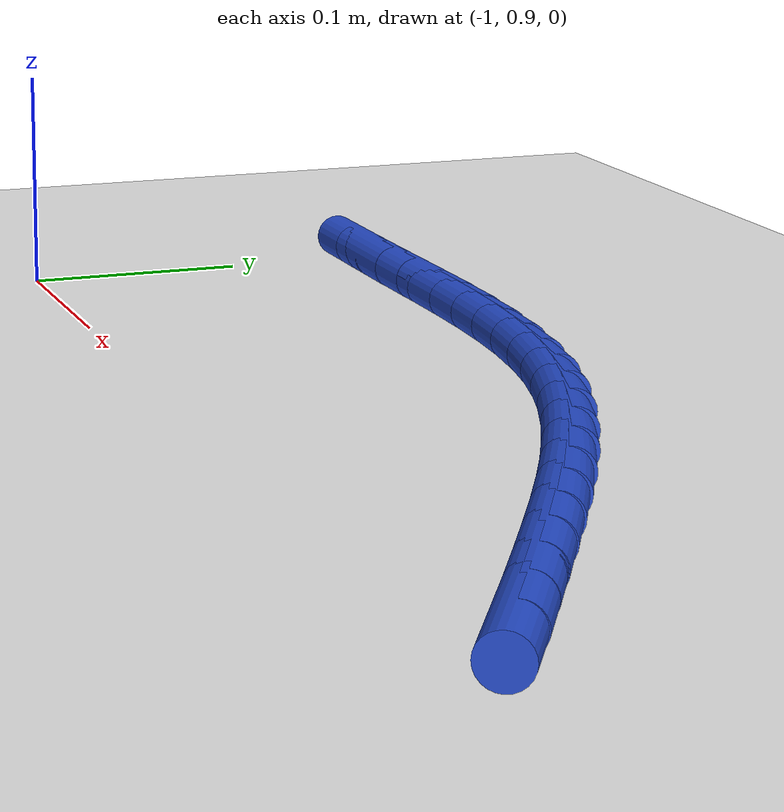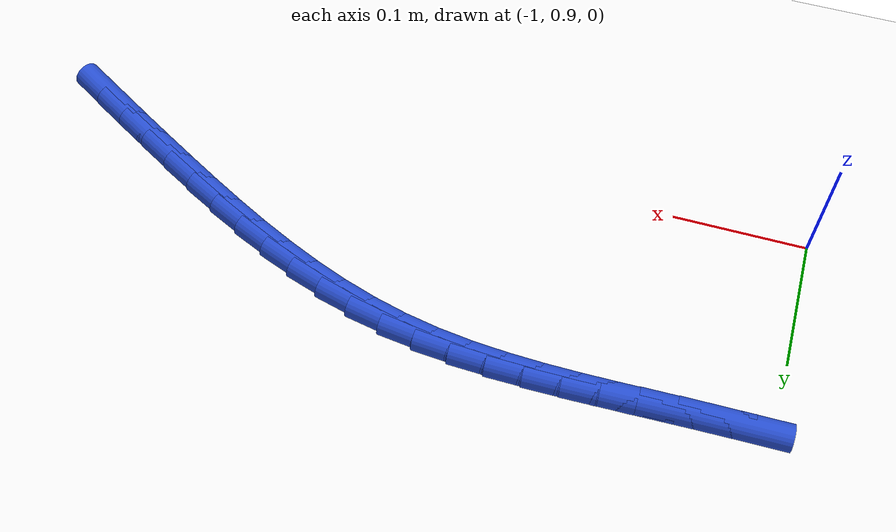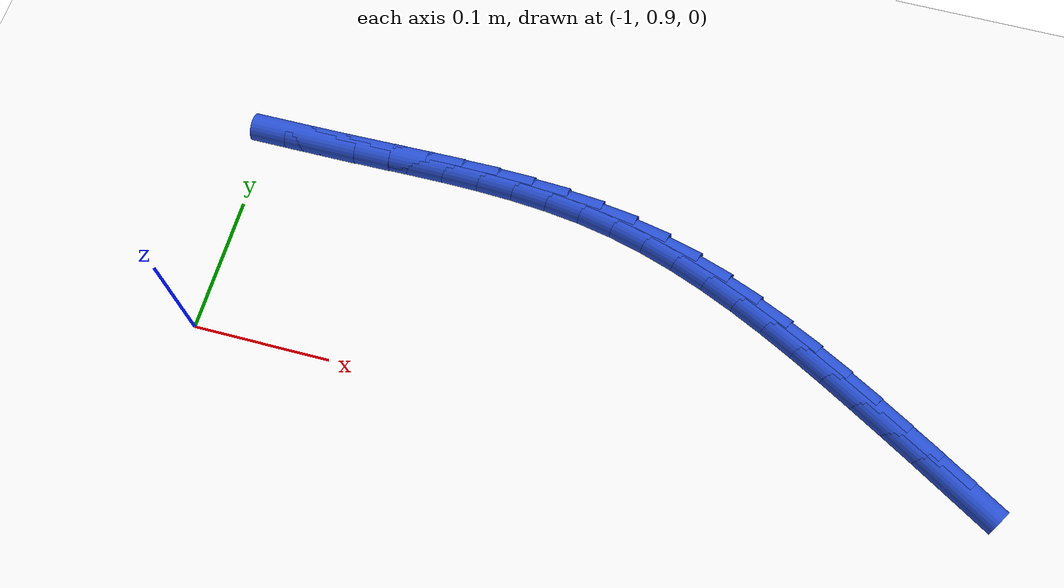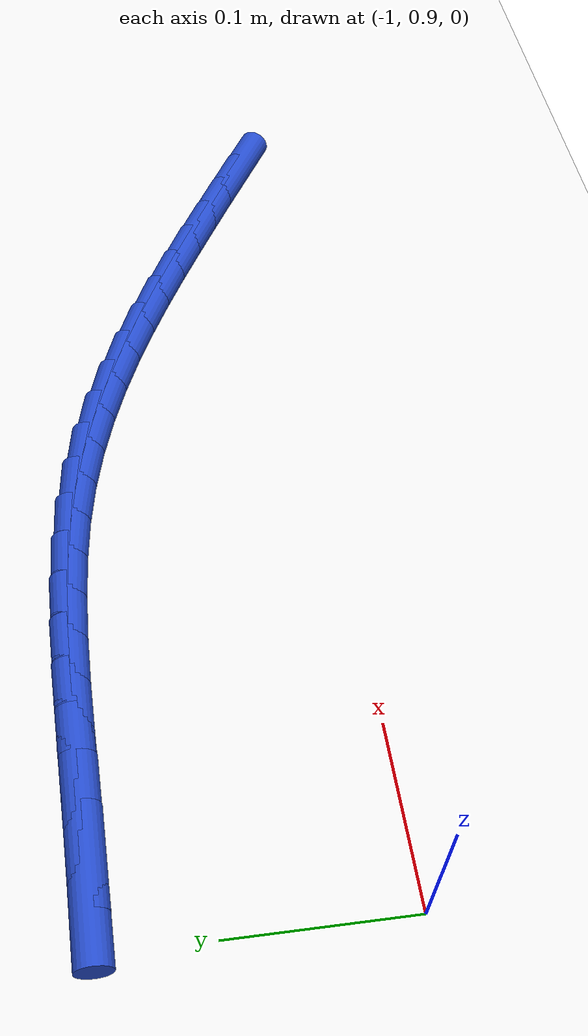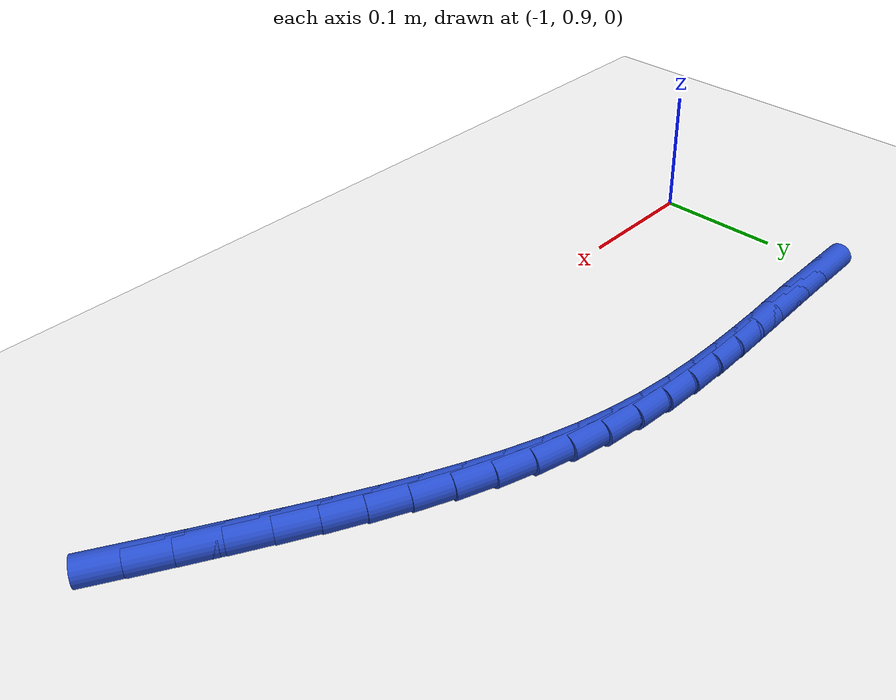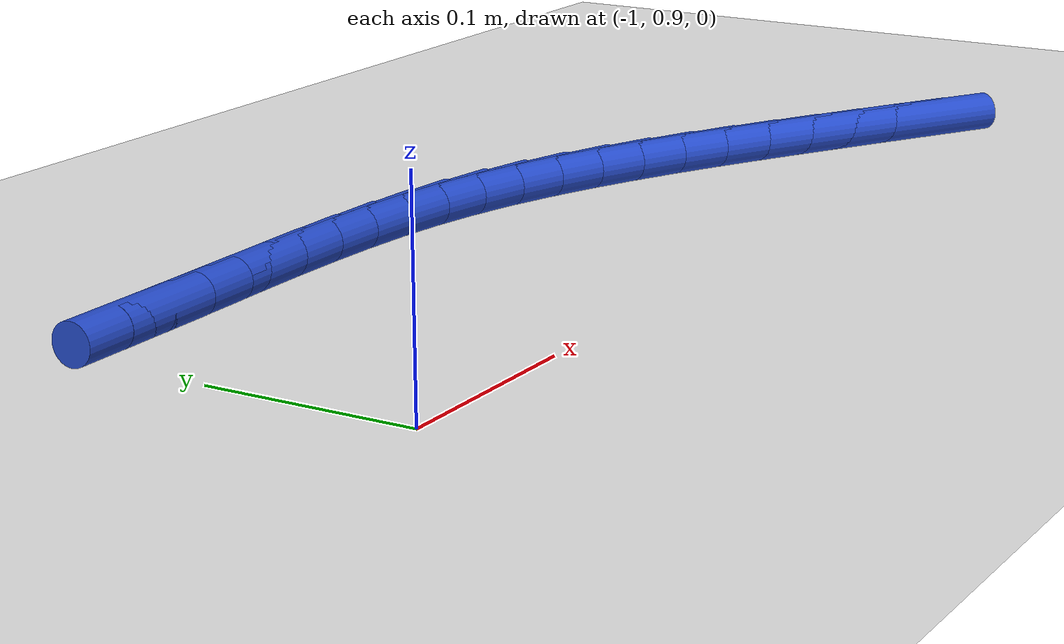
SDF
<sdf version="1.6">
 <world name="default">
  <model name="ground_plane">
   <static>1</static>
   <link name="link">
    <collision name="collision">
     <geometry><plane><normal>0 0 1</normal><size>100 100</size></plane></geometry>
     <surface><friction><ode><mu>100</mu><mu2>50</mu2></ode></friction></surface>
    </collision>
    <visual name="visual">
     <cast_shadows>0</cast_shadows>
     <geometry><plane><normal>0 0 1</normal><size>100 100</size></plane></geometry>
     <material>
      <script><uri>file://media/materials/scripts/gazebo.material</uri><name>Gazebo/WhiteGlow</name></script>
     </material>
    </visual>
   </link>
  </model>
  <model name="line">
   <link name="link_40">
    <pose>-0.4645406386712038 0.921294115031781 0.01 0 1.57 -0.5402032014789102</pose>
    <collision name="collision">
     <geometry><cylinder><radius>0.01</radius><length>0.08</length></cylinder></geometry>
    </collision>
    <visual name="visual">
     <material>
      <script><name>Gazebo/Blue</name><uri>file://media/materials/scripts/gazebo.material</uri></script>
     </material>
     <geometry><cylinder><radius>0.01</radius><length>0.08</length></cylinder></geometry>
    </visual>
   </link>
   <link name="link_41">
    <pose>-0.4883250938685658 0.9355577924714523 0.01 0 1.57 -0.529553001777052</pose>
    <collision name="collision">
     <geometry><cylinder><radius>0.01</radius><length>0.08</length></cylinder></geometry>
    </collision>
    <visual name="visual">
     <material>
      <script><name>Gazebo/Blue</name><uri>file://media/materials/scripts/gazebo.material</uri></script>
     </material>
     <geometry><cylinder><radius>0.01</radius><length>0.08</length></cylinder></geometry>
    </visual>
   </link>
   <link name="link_42">
    <pose>-0.5122388791825916 0.9495549307974676 0.01 0 1.57 -0.5244024457779427</pose>
    <collision name="collision">
     <geometry><cylinder><radius>0.01</radius><length>0.08</length></cylinder></geometry>
    </collision>
    <visual name="visual">
     <material>
      <script><name>Gazebo/Blue</name><uri>file://media/materials/scripts/gazebo.material</uri></script>
     </material>
     <geometry><cylinder><radius>0.01</radius><length>0.08</length></cylinder></geometry>
    </visual>
   </link>
   <link name="link_43">
    <pose>-0.5361121660268895 0.9633637729293281 0.01 0 1.57 -0.5153416954355567</pose>
    <collision name="collision">
     <geometry><cylinder><radius>0.01</radius><length>0.08</length></cylinder></geometry>
    </collision>
    <visual name="visual">
     <material>
      <script><name>Gazebo/Blue</name><uri>file://media/materials/scripts/gazebo.material</uri></script>
     </material>
     <geometry><cylinder><radius>0.01</radius><length>0.08</length></cylinder></geometry>
    </visual>
   </link>
   <link name="link_44">
    <pose>-0.559955563430595 0.9768685019425114 0.01 0 1.57 -0.4996777532496306</pose>
    <collision name="collision">
     <geometry><cylinder><radius>0.01</radius><length>0.08</length></cylinder></geometry>
    </collision>
    <visual name="visual">
     <material>
      <script><name>Gazebo/Blue</name><uri>file://media/materials/scripts/gazebo.material</uri></script>
     </material>
     <geometry><cylinder><radius>0.01</radius><length>0.08</length></cylinder></geometry>
    </visual>
   </link>
   <link name="link_45">
    <pose>-0.5838287690339036 0.9899005063320652 0.01 0 1.57 -0.47721897277248393</pose>
    <collision name="collision">
     <geometry><cylinder><radius>0.01</radius><length>0.08</length></cylinder></geometry>
    </collision>
    <visual name="visual">
     <material>
      <script><name>Gazebo/Blue</name><uri>file://media/materials/scripts/gazebo.material</uri></script>
     </material>
     <geometry><cylinder><radius>0.01</radius><length>0.08</length></cylinder></geometry>
    </visual>
   </link>
   <link name="link_46">
    <pose>-0.6077914814902828 1.0022911735032665 0.01 0 1.57 -0.4477557884236894</pose>
    <collision name="collision">
     <geometry><cylinder><radius>0.01</radius><length>0.08</length></cylinder></geometry>
    </collision>
    <visual name="visual">
     <material>
      <script><name>Gazebo/Blue</name><uri>file://media/materials/scripts/gazebo.material</uri></script>
     </material>
     <geometry><cylinder><radius>0.01</radius><length>0.08</length></cylinder></geometry>
    </visual>
   </link>
   <link name="link_47">
    <pose>-0.6319033994532005 1.0138718908613922 0.01 0 1.57 -0.41109118482752866</pose>
    <collision name="collision">
     <geometry><cylinder><radius>0.01</radius><length>0.08</length></cylinder></geometry>
    </collision>
    <visual name="visual">
     <material>
      <script><name>Gazebo/Blue</name><uri>file://media/materials/scripts/gazebo.material</uri></script>
     </material>
     <geometry><cylinder><radius>0.01</radius><length>0.08</length></cylinder></geometry>
    </visual>
   </link>
   <link name="link_48">
    <pose>-0.6562242215761251 1.0244740458117199 0.01 0 1.57 -0.36708557528060404</pose>
    <collision name="collision">
     <geometry><cylinder><radius>0.01</radius><length>0.08</length></cylinder></geometry>
    </collision>
    <visual name="visual">
     <material>
      <script><name>Gazebo/Blue</name><uri>file://media/materials/scripts/gazebo.material</uri></script>
     </material>
     <geometry><cylinder><radius>0.01</radius><length>0.08</length></cylinder></geometry>
    </visual>
   </link>
   <link name="link_49">
    <pose>-0.6808136465125245 1.0339290257595262 0.01 0 1.57 -0.31571690771805666</pose>
    <collision name="collision">
     <geometry><cylinder><radius>0.01</radius><length>0.08</length></cylinder></geometry>
    </collision>
    <visual name="visual">
     <material>
      <script><name>Gazebo/Blue</name><uri>file://media/materials/scripts/gazebo.material</uri></script>
     </material>
     <geometry><cylinder><radius>0.01</radius><length>0.08</length></cylinder></geometry>
    </visual>
   </link>
   <link name="link_50">
    <pose>-0.7057313729158664 1.0420682181100882 0.01 0 1.57 -0.257153350176507</pose>
    <collision name="collision">
     <geometry><cylinder><radius>0.01</radius><length>0.08</length></cylinder></geometry>
    </collision>
    <visual name="visual">
     <material>
      <script><name>Gazebo/Blue</name><uri>file://media/materials/scripts/gazebo.material</uri></script>
     </material>
     <geometry><cylinder><radius>0.01</radius><length>0.08</length></cylinder></geometry>
    </visual>
   </link>
   <link name="link_51">
    <pose>-0.7310370994396191 1.048723010268683 0.01 0 1.57 -0.19238497160615148</pose>
    <collision name="collision">
     <geometry><cylinder><radius>0.01</radius><length>0.08</length></cylinder></geometry>
    </collision>
    <visual name="visual">
     <material>
      <script><name>Gazebo/Blue</name><uri>file://media/materials/scripts/gazebo.material</uri></script>
     </material>
     <geometry><cylinder><radius>0.01</radius><length>0.08</length></cylinder></geometry>
    </visual>
   </link>
   <link name="link_52">
    <pose>-0.7567856003676122 1.0537386679174294 0.01 0 1.57 -0.13102034681749103</pose>
    <collision name="collision">
     <geometry><cylinder><radius>0.01</radius><length>0.08</length></cylinder></geometry>
    </collision>
    <visual name="visual">
     <material>
      <script><name>Gazebo/Blue</name><uri>file://media/materials/scripts/gazebo.material</uri></script>
     </material>
     <geometry><cylinder><radius>0.01</radius><length>0.08</length></cylinder></geometry>
    </visual>
   </link>
   <link name="link_53">
    <pose>-0.7829513835665042 1.0571866703739625 0.01 0 1.57 -0.08045230609169367</pose>
    <collision name="collision">
     <geometry><cylinder><radius>0.01</radius><length>0.08</length></cylinder></geometry>
    </collision>
    <visual name="visual">
     <material>
      <script><name>Gazebo/Blue</name><uri>file://media/materials/scripts/gazebo.material</uri></script>
     </material>
     <geometry><cylinder><radius>0.01</radius><length>0.08</length></cylinder></geometry>
    </visual>
   </link>
   <link name="link_54">
    <pose>-0.8094436174735646 1.0593226420864252 0.01 0 1.57 -0.04057190371846167</pose>
    <collision name="collision">
     <geometry><cylinder><radius>0.01</radius><length>0.08</length></cylinder></geometry>
    </collision>
    <visual name="visual">
     <material>
      <script><name>Gazebo/Blue</name><uri>file://media/materials/scripts/gazebo.material</uri></script>
     </material>
     <geometry><cylinder><radius>0.01</radius><length>0.08</length></cylinder></geometry>
    </visual>
   </link>
   <link name="link_55">
    <pose>-0.8361695712296399 1.0604075602614795 0.01 0 1.57 -0.010973708911569565</pose>
    <collision name="collision">
     <geometry><cylinder><radius>0.01</radius><length>0.08</length></cylinder></geometry>
    </collision>
    <visual name="visual">
     <material>
      <script><name>Gazebo/Blue</name><uri>file://media/materials/scripts/gazebo.material</uri></script>
     </material>
     <geometry><cylinder><radius>0.01</radius><length>0.08</length></cylinder></geometry>
    </visual>
   </link>
   <link name="link_56">
    <pose>-0.8630365139755777 1.0607024021057887 0.01 0 1.57 0.008703311040011917</pose>
    <collision name="collision">
     <geometry><cylinder><radius>0.01</radius><length>0.08</length></cylinder></geometry>
    </collision>
    <visual name="visual">
     <material>
      <script><name>Gazebo/Blue</name><uri>file://media/materials/scripts/gazebo.material</uri></script>
     </material>
     <geometry><cylinder><radius>0.01</radius><length>0.08</length></cylinder></geometry>
    </visual>
   </link>
   <link name="link_57">
    <pose>-0.889951714852225 1.0604681448260143 0.01 0 1.57 0.01869397330084533</pose>
    <collision name="collision">
     <geometry><cylinder><radius>0.01</radius><length>0.08</length></cylinder></geometry>
    </collision>
    <visual name="visual">
     <material>
      <script><name>Gazebo/Blue</name><uri>file://media/materials/scripts/gazebo.material</uri></script>
     </material>
     <geometry><cylinder><radius>0.01</radius><length>0.08</length></cylinder></geometry>
    </visual>
   </link>
   <link name="link_58">
    <pose>-0.9168224430004293 1.0599657656288193 0.01 0 1.57 0.019061448312469573</pose>
    <collision name="collision">
     <geometry><cylinder><radius>0.01</radius><length>0.08</length></cylinder></geometry>
    </collision>
    <visual name="visual">
     <material>
      <script><name>Gazebo/Blue</name><uri>file://media/materials/scripts/gazebo.material</uri></script>
     </material>
     <geometry><cylinder><radius>0.01</radius><length>0.08</length></cylinder></geometry>
    </visual>
   </link>
   <link name="link_59">
    <pose>-0.9435560314435383 1.0594561229886919 0.01 0 1.57 0.01235893265124324</pose>
    <collision name="collision">
     <geometry><cylinder><radius>0.01</radius><length>0.08</length></cylinder></geometry>
    </collision>
    <visual name="visual">
     <material>
      <script><name>Gazebo/Blue</name><uri>file://media/materials/scripts/gazebo.material</uri></script>
     </material>
     <geometry><cylinder><radius>0.01</radius><length>0.08</length></cylinder></geometry>
    </visual>
   </link>
   <link name="link_60">
    <pose>-0.9700985554113428 1.0591280690197369 0.01 0 1.57 0.005743622762257811</pose>
    <collision name="collision">
     <geometry><cylinder><radius>0.01</radius><length>0.08</length></cylinder></geometry>
    </collision>
    <visual name="visual">
     <material>
      <script><name>Gazebo/Blue</name><uri>file://media/materials/scripts/gazebo.material</uri></script>
     </material>
     <geometry><cylinder><radius>0.01</radius><length>0.08</length></cylinder></geometry>
    </visual>
   </link>
  </model>
 </world>
</sdf>
